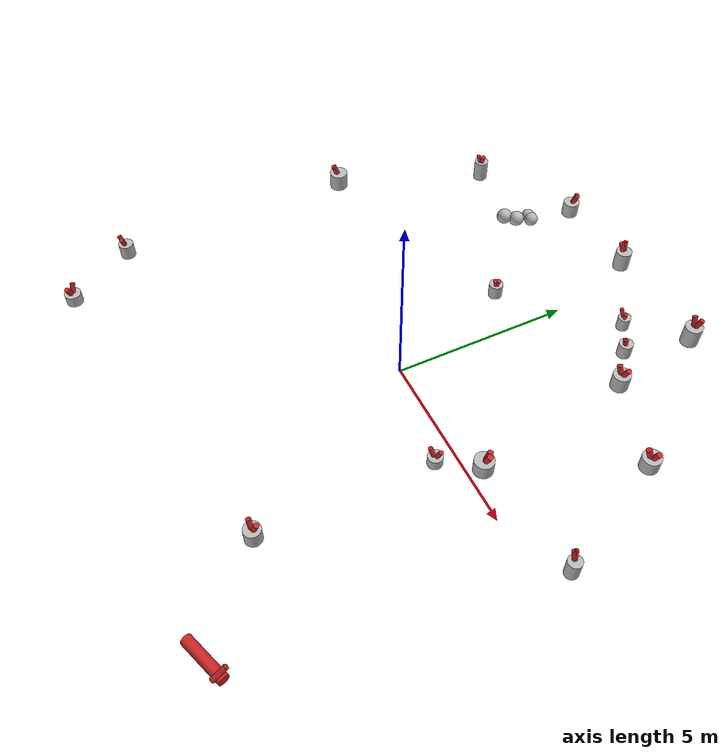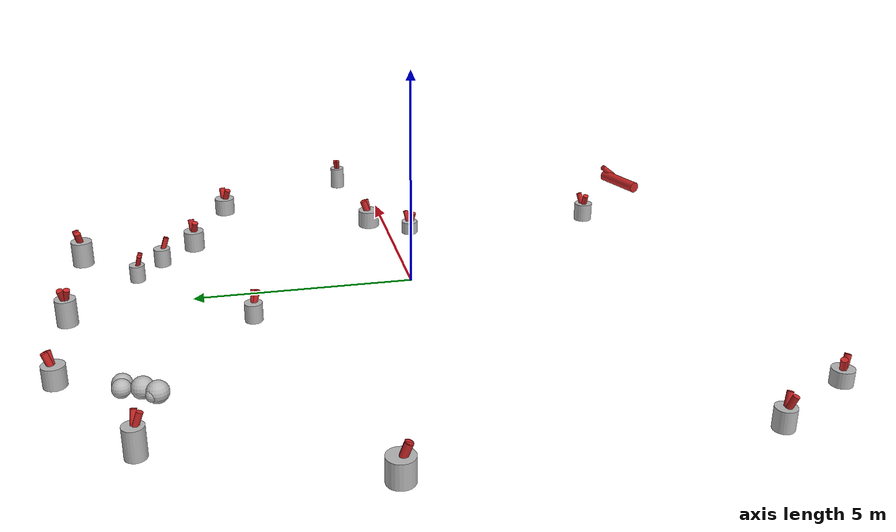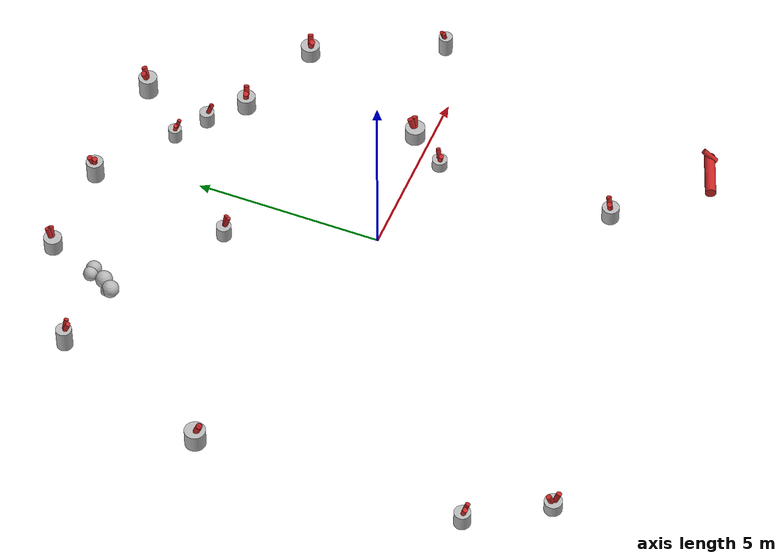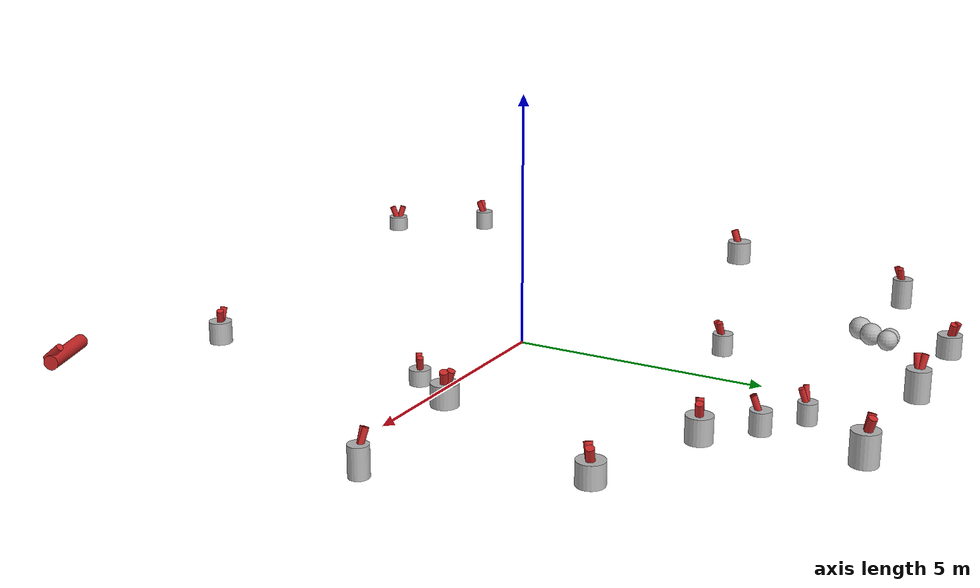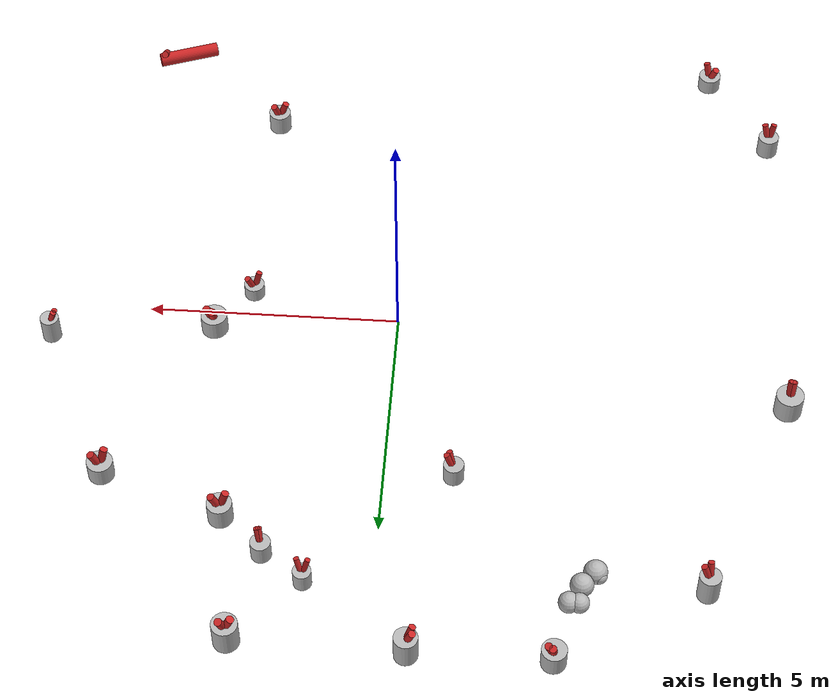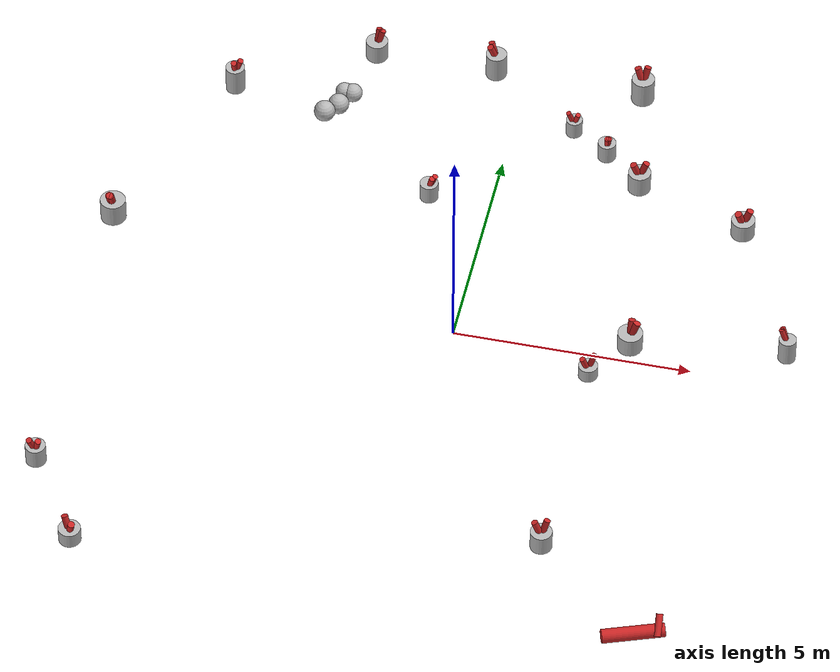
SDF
<sdf version="1.6">
 <world name="default">
  <model name="log_21">
   <static>true</static>
   <link name="log">
    <pose>5.1990 -7.2420 0.1443 0 1.5708 0.3511</pose>
    <visual name="log_v">
     <geometry><cylinder><radius>0.1443</radius><length>1.2741</length></cylinder></geometry>
     <material>
      <script>
       <uri>model://bushfire/materials/scripts</uri>
       <uri>model://bushfire/materials/textures</uri>
       <name>Bushfire/CharredLog</name>
      </script>
     </material>
    </visual>
   </link>
   <link name="stub">
    <pose>5.6776 -7.0668 0.3043 0 0.900 1.651</pose>
    <visual name="stub_v">
     <geometry><cylinder><radius>0.0721</radius><length>0.4500</length></cylinder></geometry>
     <material>
      <script>
       <uri>model://bushfire/materials/scripts</uri>
       <uri>model://bushfire/materials/textures</uri>
       <name>Bushfire/CharredLog</name>
      </script>
     </material>
    </visual>
   </link>
  </model>
  <model name="stump_22">
   <static>true</static>
   <link name="stump">
    <pose>-7.5519 -5.2541 0.2225 0 0 0</pose>
    <visual name="stump_v">
     <geometry><cylinder><radius>0.2114</radius><length>0.4449</length></cylinder></geometry>
     <material>
      <script>
       <uri>model://bushfire/materials/scripts</uri>
       <uri>model://bushfire/materials/textures</uri>
       <name>Bushfire/CharBark</name>
      </script>
     </material>
    </visual>
   </link>
   <link name="splinter0">
    <pose>-7.4887 -5.3182 0.5549 0 0.350 5.490</pose>
    <visual name="splinter0_v">
     <geometry><cylinder><radius>0.0634</radius><length>0.3000</length></cylinder></geometry>
     <material>
      <script>
       <uri>model://bushfire/materials/scripts</uri>
       <uri>model://bushfire/materials/textures</uri>
       <name>Bushfire/CharredLog</name>
      </script>
     </material>
    </visual>
   </link>
   <link name="splinter1">
    <pose>-7.6094 -5.3233 0.5549 0 0.350 4.019</pose>
    <visual name="splinter1_v">
     <geometry><cylinder><radius>0.0634</radius><length>0.3000</length></cylinder></geometry>
     <material>
      <script>
       <uri>model://bushfire/materials/scripts</uri>
       <uri>model://bushfire/materials/textures</uri>
       <name>Bushfire/CharredLog</name>
      </script>
     </material>
    </visual>
   </link>
  </model>
  <model name="stump_23">
   <static>true</static>
   <link name="stump">
    <pose>-6.3421 -7.1538 0.1682 0 0 0</pose>
    <visual name="stump_v">
     <geometry><cylinder><radius>0.2298</radius><length>0.3364</length></cylinder></geometry>
     <material>
      <script>
       <uri>model://bushfire/materials/scripts</uri>
       <uri>model://bushfire/materials/textures</uri>
       <name>Bushfire/CharBark</name>
      </script>
     </material>
    </visual>
   </link>
   <link name="splinter0">
    <pose>-6.2896 -7.2269 0.4464 0 0.350 5.335</pose>
    <visual name="splinter0_v">
     <geometry><cylinder><radius>0.0689</radius><length>0.3000</length></cylinder></geometry>
     <material>
      <script>
       <uri>model://bushfire/materials/scripts</uri>
       <uri>model://bushfire/materials/textures</uri>
       <name>Bushfire/CharredLog</name>
      </script>
     </material>
    </visual>
   </link>
   <link name="splinter1">
    <pose>-6.4122 -7.0974 0.4464 0 0.350 2.465</pose>
    <visual name="splinter1_v">
     <geometry><cylinder><radius>0.0689</radius><length>0.3000</length></cylinder></geometry>
     <material>
      <script>
       <uri>model://bushfire/materials/scripts</uri>
       <uri>model://bushfire/materials/textures</uri>
       <name>Bushfire/CharredLog</name>
      </script>
     </material>
    </visual>
   </link>
  </model>
  <model name="stump_24">
   <static>true</static>
   <link name="stump">
    <pose>2.9530 -0.5531 0.1515 0 0 0</pose>
    <visual name="stump_v">
     <geometry><cylinder><radius>0.2021</radius><length>0.3029</length></cylinder></geometry>
     <material>
      <script>
       <uri>model://bushfire/materials/scripts</uri>
       <uri>model://bushfire/materials/textures</uri>
       <name>Bushfire/CharBark</name>
      </script>
     </material>
    </visual>
   </link>
   <link name="splinter0">
    <pose>2.8820 -0.6083 0.4129 0 0.350 3.802</pose>
    <visual name="splinter0_v">
     <geometry><cylinder><radius>0.0606</radius><length>0.3000</length></cylinder></geometry>
     <material>
      <script>
       <uri>model://bushfire/materials/scripts</uri>
       <uri>model://bushfire/materials/textures</uri>
       <name>Bushfire/CharredLog</name>
      </script>
     </material>
    </visual>
   </link>
   <link name="splinter1">
    <pose>3.0248 -0.4988 0.4129 0 0.350 0.647</pose>
    <visual name="splinter1_v">
     <geometry><cylinder><radius>0.0606</radius><length>0.3000</length></cylinder></geometry>
     <material>
      <script>
       <uri>model://bushfire/materials/scripts</uri>
       <uri>model://bushfire/materials/textures</uri>
       <name>Bushfire/CharredLog</name>
      </script>
     </material>
    </visual>
   </link>
  </model>
  <model name="stump_25">
   <static>true</static>
   <link name="stump">
    <pose>-1.3363 3.7267 0.2105 0 0 0</pose>
    <visual name="stump_v">
     <geometry><cylinder><radius>0.1967</radius><length>0.4211</length></cylinder></geometry>
     <material>
      <script>
       <uri>model://bushfire/materials/scripts</uri>
       <uri>model://bushfire/materials/textures</uri>
       <name>Bushfire/CharBark</name>
      </script>
     </material>
    </visual>
   </link>
   <link name="splinter0">
    <pose>-1.2478 3.7103 0.5311 0 0.350 6.099</pose>
    <visual name="splinter0_v">
     <geometry><cylinder><radius>0.0590</radius><length>0.3000</length></cylinder></geometry>
     <material>
      <script>
       <uri>model://bushfire/materials/scripts</uri>
       <uri>model://bushfire/materials/textures</uri>
       <name>Bushfire/CharredLog</name>
      </script>
     </material>
    </visual>
   </link>
   <link name="splinter1">
    <pose>-1.2791 3.6572 0.5311 0 0.350 5.401</pose>
    <visual name="splinter1_v">
     <geometry><cylinder><radius>0.0590</radius><length>0.3000</length></cylinder></geometry>
     <material>
      <script>
       <uri>model://bushfire/materials/scripts</uri>
       <uri>model://bushfire/materials/textures</uri>
       <name>Bushfire/CharredLog</name>
      </script>
     </material>
    </visual>
   </link>
  </model>
  <model name="stump_26">
   <static>true</static>
   <link name="stump">
    <pose>-7.7227 1.7262 0.2544 0 0 0</pose>
    <visual name="stump_v">
     <geometry><cylinder><radius>0.2703</radius><length>0.5088</length></cylinder></geometry>
     <material>
      <script>
       <uri>model://bushfire/materials/scripts</uri>
       <uri>model://bushfire/materials/textures</uri>
       <name>Bushfire/CharBark</name>
      </script>
     </material>
    </visual>
   </link>
   <link name="splinter0">
    <pose>-7.7311 1.6365 0.6188 0 0.350 4.619</pose>
    <visual name="splinter0_v">
     <geometry><cylinder><radius>0.0811</radius><length>0.3000</length></cylinder></geometry>
     <material>
      <script>
       <uri>model://bushfire/materials/scripts</uri>
       <uri>model://bushfire/materials/textures</uri>
       <name>Bushfire/CharredLog</name>
      </script>
     </material>
    </visual>
   </link>
   <link name="splinter1">
    <pose>-7.7462 1.6393 0.6188 0 0.350 4.448</pose>
    <visual name="splinter1_v">
     <geometry><cylinder><radius>0.0811</radius><length>0.3000</length></cylinder></geometry>
     <material>
      <script>
       <uri>model://bushfire/materials/scripts</uri>
       <uri>model://bushfire/materials/textures</uri>
       <name>Bushfire/CharredLog</name>
      </script>
     </material>
    </visual>
   </link>
  </model>
  <model name="stump_27">
   <static>true</static>
   <link name="stump">
    <pose>6.8683 0.8091 0.2793 0 0 0</pose>
    <visual name="stump_v">
     <geometry><cylinder><radius>0.1835</radius><length>0.5586</length></cylinder></geometry>
     <material>
      <script>
       <uri>model://bushfire/materials/scripts</uri>
       <uri>model://bushfire/materials/textures</uri>
       <name>Bushfire/CharBark</name>
      </script>
     </material>
    </visual>
   </link>
   <link name="splinter0">
    <pose>6.7892 0.8521 0.6686 0 0.350 2.643</pose>
    <visual name="splinter0_v">
     <geometry><cylinder><radius>0.0551</radius><length>0.3000</length></cylinder></geometry>
     <material>
      <script>
       <uri>model://bushfire/materials/scripts</uri>
       <uri>model://bushfire/materials/textures</uri>
       <name>Bushfire/CharredLog</name>
      </script>
     </material>
    </visual>
   </link>
   <link name="splinter1">
    <pose>6.7785 0.8148 0.6686 0 0.350 3.078</pose>
    <visual name="splinter1_v">
     <geometry><cylinder><radius>0.0551</radius><length>0.3000</length></cylinder></geometry>
     <material>
      <script>
       <uri>model://bushfire/materials/scripts</uri>
       <uri>model://bushfire/materials/textures</uri>
       <name>Bushfire/CharredLog</name>
      </script>
     </material>
    </visual>
   </link>
  </model>
  <model name="stump_28">
   <static>true</static>
   <link name="stump">
    <pose>1.2876 6.2590 0.1988 0 0 0</pose>
    <visual name="stump_v">
     <geometry><cylinder><radius>0.1748</radius><length>0.3976</length></cylinder></geometry>
     <material>
      <script>
       <uri>model://bushfire/materials/scripts</uri>
       <uri>model://bushfire/materials/textures</uri>
       <name>Bushfire/CharBark</name>
      </script>
     </material>
    </visual>
   </link>
   <link name="splinter0">
    <pose>1.2153 6.2054 0.5076 0 0.350 3.780</pose>
    <visual name="splinter0_v">
     <geometry><cylinder><radius>0.0524</radius><length>0.3000</length></cylinder></geometry>
     <material>
      <script>
       <uri>model://bushfire/materials/scripts</uri>
       <uri>model://bushfire/materials/textures</uri>
       <name>Bushfire/CharredLog</name>
      </script>
     </material>
    </visual>
   </link>
   <link name="splinter1">
    <pose>1.3517 6.1958 0.5076 0 0.350 5.505</pose>
    <visual name="splinter1_v">
     <geometry><cylinder><radius>0.0524</radius><length>0.3000</length></cylinder></geometry>
     <material>
      <script>
       <uri>model://bushfire/materials/scripts</uri>
       <uri>model://bushfire/materials/textures</uri>
       <name>Bushfire/CharredLog</name>
      </script>
     </material>
    </visual>
   </link>
  </model>
  <model name="stump_29">
   <static>true</static>
   <link name="stump">
    <pose>-3.3448 7.6272 0.2251 0 0 0</pose>
    <visual name="stump_v">
     <geometry><cylinder><radius>0.2365</radius><length>0.4502</length></cylinder></geometry>
     <material>
      <script>
       <uri>model://bushfire/materials/scripts</uri>
       <uri>model://bushfire/materials/textures</uri>
       <name>Bushfire/CharBark</name>
      </script>
     </material>
    </visual>
   </link>
   <link name="splinter0">
    <pose>-3.3245 7.7149 0.5602 0 0.350 1.343</pose>
    <visual name="splinter0_v">
     <geometry><cylinder><radius>0.0709</radius><length>0.3000</length></cylinder></geometry>
     <material>
      <script>
       <uri>model://bushfire/materials/scripts</uri>
       <uri>model://bushfire/materials/textures</uri>
       <name>Bushfire/CharredLog</name>
      </script>
     </material>
    </visual>
   </link>
   <link name="splinter1">
    <pose>-3.2728 7.6813 0.5602 0 0.350 0.644</pose>
    <visual name="splinter1_v">
     <geometry><cylinder><radius>0.0709</radius><length>0.3000</length></cylinder></geometry>
     <material>
      <script>
       <uri>model://bushfire/materials/scripts</uri>
       <uri>model://bushfire/materials/textures</uri>
       <name>Bushfire/CharredLog</name>
      </script>
     </material>
    </visual>
   </link>
  </model>
  <model name="stump_30">
   <static>true</static>
   <link name="stump">
    <pose>2.1094 5.7043 0.2133 0 0 0</pose>
    <visual name="stump_v">
     <geometry><cylinder><radius>0.1938</radius><length>0.4267</length></cylinder></geometry>
     <material>
      <script>
       <uri>model://bushfire/materials/scripts</uri>
       <uri>model://bushfire/materials/textures</uri>
       <name>Bushfire/CharBark</name>
      </script>
     </material>
    </visual>
   </link>
   <link name="splinter0">
    <pose>2.1277 5.6162 0.5367 0 0.350 4.917</pose>
    <visual name="splinter0_v">
     <geometry><cylinder><radius>0.0581</radius><length>0.3000</length></cylinder></geometry>
     <material>
      <script>
       <uri>model://bushfire/materials/scripts</uri>
       <uri>model://bushfire/materials/textures</uri>
       <name>Bushfire/CharredLog</name>
      </script>
     </material>
    </visual>
   </link>
   <link name="splinter1">
    <pose>2.1504 5.6242 0.5367 0 0.350 5.185</pose>
    <visual name="splinter1_v">
     <geometry><cylinder><radius>0.0581</radius><length>0.3000</length></cylinder></geometry>
     <material>
      <script>
       <uri>model://bushfire/materials/scripts</uri>
       <uri>model://bushfire/materials/textures</uri>
       <name>Bushfire/CharredLog</name>
      </script>
     </material>
    </visual>
   </link>
  </model>
  <model name="stump_31">
   <static>true</static>
   <link name="stump">
    <pose>-0.7083 7.6468 0.2996 0 0 0</pose>
    <visual name="stump_v">
     <geometry><cylinder><radius>0.2257</radius><length>0.5991</length></cylinder></geometry>
     <material>
      <script>
       <uri>model://bushfire/materials/scripts</uri>
       <uri>model://bushfire/materials/textures</uri>
       <name>Bushfire/CharBark</name>
      </script>
     </material>
    </visual>
   </link>
   <link name="splinter0">
    <pose>-0.7839 7.5980 0.7091 0 0.350 3.715</pose>
    <visual name="splinter0_v">
     <geometry><cylinder><radius>0.0677</radius><length>0.3000</length></cylinder></geometry>
     <material>
      <script>
       <uri>model://bushfire/materials/scripts</uri>
       <uri>model://bushfire/materials/textures</uri>
       <name>Bushfire/CharredLog</name>
      </script>
     </material>
    </visual>
   </link>
   <link name="splinter1">
    <pose>-0.7859 7.6924 0.7091 0 0.350 2.611</pose>
    <visual name="splinter1_v">
     <geometry><cylinder><radius>0.0677</radius><length>0.3000</length></cylinder></geometry>
     <material>
      <script>
       <uri>model://bushfire/materials/scripts</uri>
       <uri>model://bushfire/materials/textures</uri>
       <name>Bushfire/CharredLog</name>
      </script>
     </material>
    </visual>
   </link>
  </model>
  <model name="stump_32">
   <static>true</static>
   <link name="stump">
    <pose>5.3454 4.0996 0.2105 0 0 0</pose>
    <visual name="stump_v">
     <geometry><cylinder><radius>0.2515</radius><length>0.4210</length></cylinder></geometry>
     <material>
      <script>
       <uri>model://bushfire/materials/scripts</uri>
       <uri>model://bushfire/materials/textures</uri>
       <name>Bushfire/CharBark</name>
      </script>
     </material>
    </visual>
   </link>
   <link name="splinter0">
    <pose>5.4313 4.1266 0.5310 0 0.350 0.304</pose>
    <visual name="splinter0_v">
     <geometry><cylinder><radius>0.0754</radius><length>0.3000</length></cylinder></geometry>
     <material>
      <script>
       <uri>model://bushfire/materials/scripts</uri>
       <uri>model://bushfire/materials/textures</uri>
       <name>Bushfire/CharredLog</name>
      </script>
     </material>
    </visual>
   </link>
   <link name="splinter1">
    <pose>5.2834 4.0344 0.5310 0 0.350 3.952</pose>
    <visual name="splinter1_v">
     <geometry><cylinder><radius>0.0754</radius><length>0.3000</length></cylinder></geometry>
     <material>
      <script>
       <uri>model://bushfire/materials/scripts</uri>
       <uri>model://bushfire/materials/textures</uri>
       <name>Bushfire/CharredLog</name>
      </script>
     </material>
    </visual>
   </link>
  </model>
  <model name="stump_33">
   <static>true</static>
   <link name="stump">
    <pose>2.9611 4.9387 0.2409 0 0 0</pose>
    <visual name="stump_v">
     <geometry><cylinder><radius>0.2422</radius><length>0.4818</length></cylinder></geometry>
     <material>
      <script>
       <uri>model://bushfire/materials/scripts</uri>
       <uri>model://bushfire/materials/textures</uri>
       <name>Bushfire/CharBark</name>
      </script>
     </material>
    </visual>
   </link>
   <link name="splinter0">
    <pose>2.8781 4.9037 0.5918 0 0.350 3.540</pose>
    <visual name="splinter0_v">
     <geometry><cylinder><radius>0.0727</radius><length>0.3000</length></cylinder></geometry>
     <material>
      <script>
       <uri>model://bushfire/materials/scripts</uri>
       <uri>model://bushfire/materials/textures</uri>
       <name>Bushfire/CharredLog</name>
      </script>
     </material>
    </visual>
   </link>
   <link name="splinter1">
    <pose>3.0466 4.9666 0.5918 0 0.350 0.315</pose>
    <visual name="splinter1_v">
     <geometry><cylinder><radius>0.0727</radius><length>0.3000</length></cylinder></geometry>
     <material>
      <script>
       <uri>model://bushfire/materials/scripts</uri>
       <uri>model://bushfire/materials/textures</uri>
       <name>Bushfire/CharredLog</name>
      </script>
     </material>
    </visual>
   </link>
  </model>
  <model name="stump_34">
   <static>true</static>
   <link name="stump">
    <pose>2.5257 7.5838 0.2988 0 0 0</pose>
    <visual name="stump_v">
     <geometry><cylinder><radius>0.2461</radius><length>0.5976</length></cylinder></geometry>
     <material>
      <script>
       <uri>model://bushfire/materials/scripts</uri>
       <uri>model://bushfire/materials/textures</uri>
       <name>Bushfire/CharBark</name>
      </script>
     </material>
    </visual>
   </link>
   <link name="splinter0">
    <pose>2.5741 7.6597 0.7076 0 0.350 1.003</pose>
    <visual name="splinter0_v">
     <geometry><cylinder><radius>0.0738</radius><length>0.3000</length></cylinder></geometry>
     <material>
      <script>
       <uri>model://bushfire/materials/scripts</uri>
       <uri>model://bushfire/materials/textures</uri>
       <name>Bushfire/CharredLog</name>
      </script>
     </material>
    </visual>
   </link>
   <link name="splinter1">
    <pose>2.4417 7.6160 0.7076 0 0.350 2.775</pose>
    <visual name="splinter1_v">
     <geometry><cylinder><radius>0.0738</radius><length>0.3000</length></cylinder></geometry>
     <material>
      <script>
       <uri>model://bushfire/materials/scripts</uri>
       <uri>model://bushfire/materials/textures</uri>
       <name>Bushfire/CharredLog</name>
      </script>
     </material>
    </visual>
   </link>
  </model>
  <model name="stump_35">
   <static>true</static>
   <link name="stump">
    <pose>-6.1105 6.0190 0.3099 0 0 0</pose>
    <visual name="stump_v">
     <geometry><cylinder><radius>0.2067</radius><length>0.6199</length></cylinder></geometry>
     <material>
      <script>
       <uri>model://bushfire/materials/scripts</uri>
       <uri>model://bushfire/materials/textures</uri>
       <name>Bushfire/CharBark</name>
      </script>
     </material>
    </visual>
   </link>
   <link name="splinter0">
    <pose>-6.1030 5.9293 0.7299 0 0.350 4.796</pose>
    <visual name="splinter0_v">
     <geometry><cylinder><radius>0.0620</radius><length>0.3000</length></cylinder></geometry>
     <material>
      <script>
       <uri>model://bushfire/materials/scripts</uri>
       <uri>model://bushfire/materials/textures</uri>
       <name>Bushfire/CharredLog</name>
      </script>
     </material>
    </visual>
   </link>
   <link name="splinter1">
    <pose>-6.0231 5.9976 0.7299 0 0.350 6.044</pose>
    <visual name="splinter1_v">
     <geometry><cylinder><radius>0.0620</radius><length>0.3000</length></cylinder></geometry>
     <material>
      <script>
       <uri>model://bushfire/materials/scripts</uri>
       <uri>model://bushfire/materials/textures</uri>
       <name>Bushfire/CharredLog</name>
      </script>
     </material>
    </visual>
   </link>
  </model>
  <model name="stump_36">
   <static>true</static>
   <link name="stump">
    <pose>3.6450 0.4089 0.2139 0 0 0</pose>
    <visual name="stump_v">
     <geometry><cylinder><radius>0.2633</radius><length>0.4279</length></cylinder></geometry>
     <material>
      <script>
       <uri>model://bushfire/materials/scripts</uri>
       <uri>model://bushfire/materials/textures</uri>
       <name>Bushfire/CharBark</name>
      </script>
     </material>
    </visual>
   </link>
   <link name="splinter0">
    <pose>3.6494 0.4988 0.5379 0 0.350 1.521</pose>
    <visual name="splinter0_v">
     <geometry><cylinder><radius>0.0790</radius><length>0.3000</length></cylinder></geometry>
     <material>
      <script>
       <uri>model://bushfire/materials/scripts</uri>
       <uri>model://bushfire/materials/textures</uri>
       <name>Bushfire/CharredLog</name>
      </script>
     </material>
    </visual>
   </link>
   <link name="splinter1">
    <pose>3.7251 0.4498 0.5379 0 0.350 0.472</pose>
    <visual name="splinter1_v">
     <geometry><cylinder><radius>0.0790</radius><length>0.3000</length></cylinder></geometry>
     <material>
      <script>
       <uri>model://bushfire/materials/scripts</uri>
       <uri>model://bushfire/materials/textures</uri>
       <name>Bushfire/CharredLog</name>
      </script>
     </material>
    </visual>
   </link>
  </model>
  <model name="stump_37">
   <static>true</static>
   <link name="stump">
    <pose>2.9416 -5.2924 0.2221 0 0 0</pose>
    <visual name="stump_v">
     <geometry><cylinder><radius>0.2259</radius><length>0.4442</length></cylinder></geometry>
     <material>
      <script>
       <uri>model://bushfire/materials/scripts</uri>
       <uri>model://bushfire/materials/textures</uri>
       <name>Bushfire/CharBark</name>
      </script>
     </material>
    </visual>
   </link>
   <link name="splinter0">
    <pose>2.8517 -5.2963 0.5542 0 0.350 3.186</pose>
    <visual name="splinter0_v">
     <geometry><cylinder><radius>0.0678</radius><length>0.3000</length></cylinder></geometry>
     <material>
      <script>
       <uri>model://bushfire/materials/scripts</uri>
       <uri>model://bushfire/materials/textures</uri>
       <name>Bushfire/CharredLog</name>
      </script>
     </material>
    </visual>
   </link>
   <link name="splinter1">
    <pose>3.0052 -5.2286 0.5542 0 0.350 0.787</pose>
    <visual name="splinter1_v">
     <geometry><cylinder><radius>0.0678</radius><length>0.3000</length></cylinder></geometry>
     <material>
      <script>
       <uri>model://bushfire/materials/scripts</uri>
       <uri>model://bushfire/materials/textures</uri>
       <name>Bushfire/CharredLog</name>
      </script>
     </material>
    </visual>
   </link>
  </model>
  <model name="rock_38">
   <static>true</static>
   <link name="stone0">
    <pose>-3.8214 5.9857 0.0363 0 0 1.196</pose>
    <visual name="stone0_v">
     <geometry><sphere><radius>0.2252</radius></sphere></geometry>
     <material>
      <script>
       <uri>model://bushfire/materials/scripts</uri>
       <uri>model://bushfire/materials/textures</uri>
       <name>Bushfire/Rock</name>
      </script>
     </material>
    </visual>
   </link>
   <link name="stone1">
    <pose>-3.7817 6.3781 0.0396 0 0 1.104</pose>
    <visual name="stone1_v">
     <geometry><sphere><radius>0.1919</radius></sphere></geometry>
     <material>
      <script>
       <uri>model://bushfire/materials/scripts</uri>
       <uri>model://bushfire/materials/textures</uri>
       <name>Bushfire/Rock</name>
      </script>
     </material>
    </visual>
   </link>
   <link name="stone2">
    <pose>-4.1394 5.7845 0.0333 0 0 1.996</pose>
    <visual name="stone2_v">
     <geometry><sphere><radius>0.1426</radius></sphere></geometry>
     <material>
      <script>
       <uri>model://bushfire/materials/scripts</uri>
       <uri>model://bushfire/materials/textures</uri>
       <name>Bushfire/Rock</name>
      </script>
     </material>
    </visual>
   </link>
   <link name="stone3">
    <pose>-3.5930 6.3745 0.0379 0 0 2.661</pose>
    <visual name="stone3_v">
     <geometry><sphere><radius>0.2036</radius></sphere></geometry>
     <material>
      <script>
       <uri>model://bushfire/materials/scripts</uri>
       <uri>model://bushfire/materials/textures</uri>
       <name>Bushfire/Rock</name>
      </script>
     </material>
    </visual>
   </link>
   <link name="stone4">
    <pose>-4.0645 5.6976 0.0495 0 0 2.124</pose>
    <visual name="stone4_v">
     <geometry><sphere><radius>0.2284</radius></sphere></geometry>
     <material>
      <script>
       <uri>model://bushfire/materials/scripts</uri>
       <uri>model://bushfire/materials/textures</uri>
       <name>Bushfire/Rock</name>
      </script>
     </material>
    </visual>
   </link>
  </model>
 </world>
</sdf>
